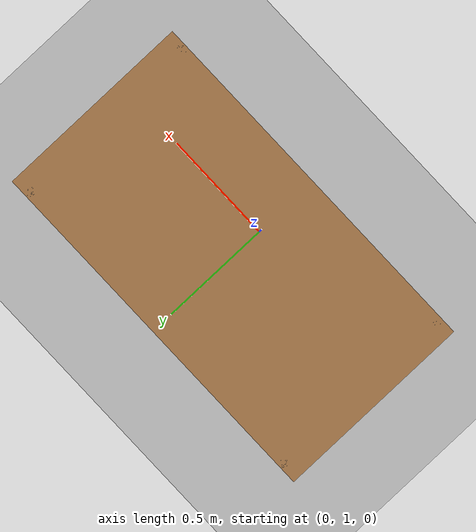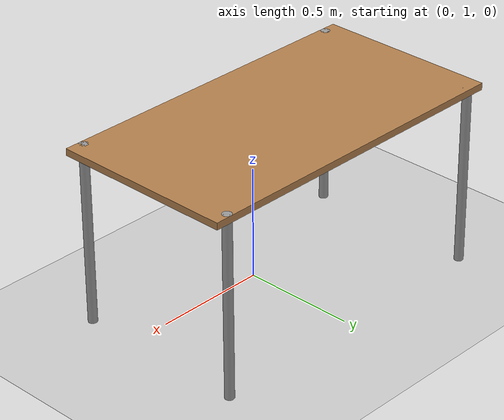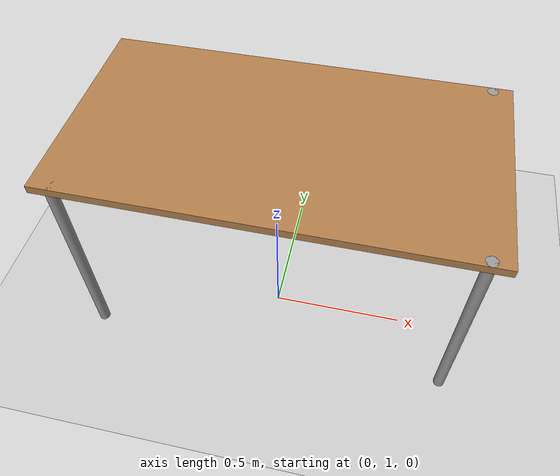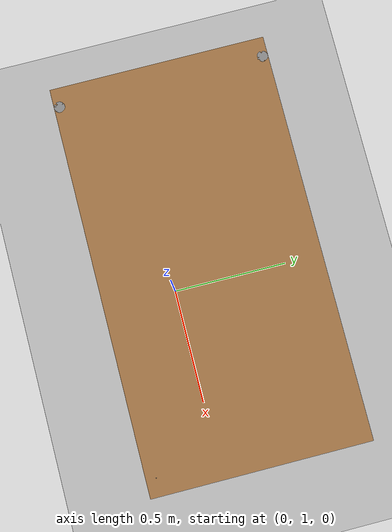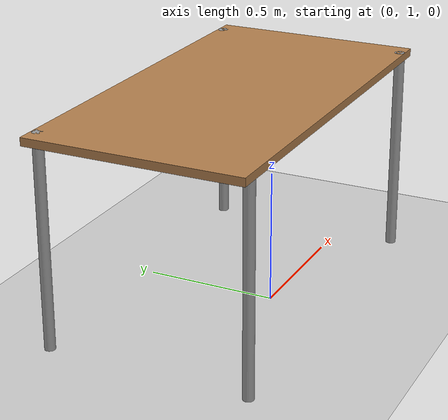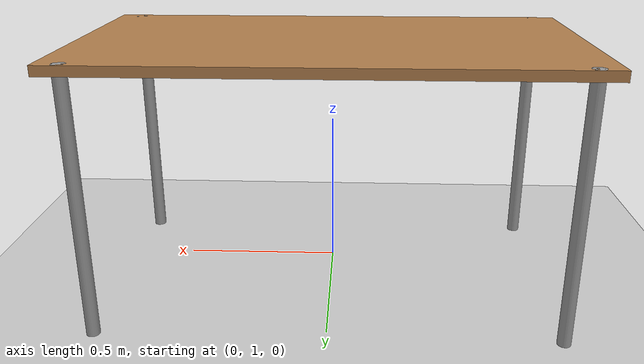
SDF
<sdf version='1.7'>
  <world name='default'>
    <light name='sun' type='directional'>
      <cast_shadows>1</cast_shadows>
      <pose>0 0 10 0 -0 0</pose>
      <diffuse>0.8 0.8 0.8 1</diffuse>
      <specular>0.2 0.2 0.2 1</specular>
      <attenuation>
        <range>1000</range>
        <constant>0.9</constant>
        <linear>0.01</linear>
        <quadratic>0.001</quadratic>
      </attenuation>
      <direction>-0.5 0.1 -0.9</direction>
      <spot>
        <inner_angle>0</inner_angle>
        <outer_angle>0</outer_angle>
        <falloff>0</falloff>
      </spot>
    </light>
    <model name='ground_plane'>
      <static>1</static>
      <link name='link'>
        <collision name='collision'>
          <geometry>
            <plane>
              <normal>0 0 1</normal>
              <size>100 100</size>
            </plane>
          </geometry>
          <surface>
            <friction>
              <ode>
                <mu>100</mu>
                <mu2>50</mu2>
              </ode>
              <torsional>
                <ode/>
              </torsional>
            </friction>
            <contact>
              <ode/>
            </contact>
            <bounce/>
          </surface>
          <max_contacts>10</max_contacts>
        </collision>
        <visual name='visual'>
          <cast_shadows>0</cast_shadows>
          <geometry>
            <plane>
              <normal>0 0 1</normal>
              <size>100 100</size>
            </plane>
          </geometry>
          <material>
            <script>
              <uri>file://media/materials/scripts/gazebo.material</uri>
              <name>Gazebo/Grey</name>
            </script>
          </material>
        </visual>
        <self_collide>0</self_collide>
        <enable_wind>0</enable_wind>
        <kinematic>0</kinematic>
      </link>
    </model>
    <gravity>0 0 -9.8</gravity>
    <magnetic_field>6e-06 2.3e-05 -4.2e-05</magnetic_field>
    <atmosphere type='adiabatic'/>
    <physics type='ode'>
      <max_step_size>0.001</max_step_size>
      <real_time_factor>1</real_time_factor>
      <real_time_update_rate>1000</real_time_update_rate>
    </physics>
    <scene>
      <ambient>0.4 0.4 0.4 1</ambient>
      <background>0.7 0.7 0.7 1</background>
      <shadows>1</shadows>
    </scene>
    <audio>
      <device>default</device>
    </audio>
    <wind/>
    <spherical_coordinates>
      <surface_model>EARTH_WGS84</surface_model>
      <latitude_deg>0</latitude_deg>
      <longitude_deg>0</longitude_deg>
      <elevation>0</elevation>
      <heading_deg>0</heading_deg>
    </spherical_coordinates>
    <model name='table'>
      <static>1</static>
      <link name='link'>
        <collision name='surface'>
          <pose>0 0 0.785 0 -0 0</pose>
          <geometry>
            <box>
              <size>1.5 0.8 0.03</size>
            </box>
          </geometry>
          <surface>
            <friction>
              <ode>
                <mu>0.6</mu>
                <mu2>0.6</mu2>
              </ode>
              <torsional>
                <ode/>
              </torsional>
            </friction>
            <contact>
              <ode/>
            </contact>
            <bounce/>
          </surface>
          <max_contacts>10</max_contacts>
        </collision>
        <visual name='visual1'>
          <pose>0 0 0.785 0 -0 0</pose>
          <geometry>
            <box>
              <size>1.5 0.8 0.03</size>
            </box>
          </geometry>
          <material>
            <script>
              <uri>file://media/materials/scripts/gazebo.material</uri>
              <name>Gazebo/Wood</name>
            </script>
          </material>
        </visual>
        <collision name='front_left_leg'>
          <pose>0.68 0.38 0.5 0 -0 0</pose>
          <geometry>
            <cylinder>
              <radius>0.02</radius>
              <length>1</length>
            </cylinder>
          </geometry>
          <max_contacts>10</max_contacts>
          <surface>
            <contact>
              <ode/>
            </contact>
            <bounce/>
            <friction>
              <torsional>
                <ode/>
              </torsional>
              <ode/>
            </friction>
          </surface>
        </collision>
        <visual name='front_left_leg'>
          <pose>0.68 0.38 0.4 0 -0 0</pose>
          <geometry>
            <cylinder>
              <radius>0.02</radius>
              <length>0.8</length>
            </cylinder>
          </geometry>
          <material>
            <script>
              <uri>file://media/materials/scripts/gazebo.material</uri>
              <name>Gazebo/Grey</name>
            </script>
          </material>
        </visual>
        <collision name='front_right_leg'>
          <pose>0.68 -0.38 0.4 0 -0 0</pose>
          <geometry>
            <cylinder>
              <radius>0.02</radius>
              <length>0.8</length>
            </cylinder>
          </geometry>
          <max_contacts>10</max_contacts>
          <surface>
            <contact>
              <ode/>
            </contact>
            <bounce/>
            <friction>
              <torsional>
                <ode/>
              </torsional>
              <ode/>
            </friction>
          </surface>
        </collision>
        <visual name='front_right_leg'>
          <pose>0.68 -0.38 0.4 0 -0 0</pose>
          <geometry>
            <cylinder>
              <radius>0.02</radius>
              <length>0.8</length>
            </cylinder>
          </geometry>
          <material>
            <script>
              <uri>file://media/materials/scripts/gazebo.material</uri>
              <name>Gazebo/Grey</name>
            </script>
          </material>
        </visual>
        <collision name='back_right_leg'>
          <pose>-0.68 -0.38 0.4 0 -0 0</pose>
          <geometry>
            <cylinder>
              <radius>0.02</radius>
              <length>0.8</length>
            </cylinder>
          </geometry>
          <max_contacts>10</max_contacts>
          <surface>
            <contact>
              <ode/>
            </contact>
            <bounce/>
            <friction>
              <torsional>
                <ode/>
              </torsional>
              <ode/>
            </friction>
          </surface>
        </collision>
        <visual name='back_right_leg'>
          <pose>-0.68 -0.38 0.4 0 -0 0</pose>
          <geometry>
            <cylinder>
              <radius>0.02</radius>
              <length>0.8</length>
            </cylinder>
          </geometry>
          <material>
            <script>
              <uri>file://media/materials/scripts/gazebo.material</uri>
              <name>Gazebo/Grey</name>
            </script>
          </material>
        </visual>
        <collision name='back_left_leg'>
          <pose>-0.68 0.38 0.4 0 -0 0</pose>
          <geometry>
            <cylinder>
              <radius>0.02</radius>
              <length>0.8</length>
            </cylinder>
          </geometry>
          <max_contacts>10</max_contacts>
          <surface>
            <contact>
              <ode/>
            </contact>
            <bounce/>
            <friction>
              <torsional>
                <ode/>
              </torsional>
              <ode/>
            </friction>
          </surface>
        </collision>
        <visual name='back_left_leg'>
          <pose>-0.68 0.38 0.4 0 -0 0</pose>
          <geometry>
            <cylinder>
              <radius>0.02</radius>
              <length>0.8</length>
            </cylinder>
          </geometry>
          <material>
            <script>
              <uri>file://media/materials/scripts/gazebo.material</uri>
              <name>Gazebo/Grey</name>
            </script>
          </material>
        </visual>
        <self_collide>0</self_collide>
        <enable_wind>0</enable_wind>
        <kinematic>0</kinematic>
      </link>
      <pose>0 1.15 0 0 -0 0</pose>
    </model>
  </world>
</sdf>
